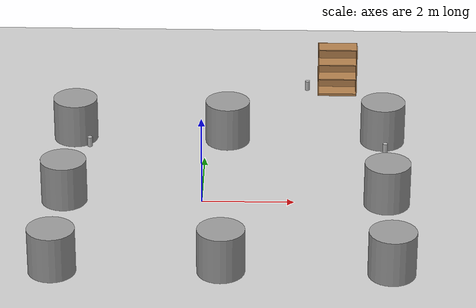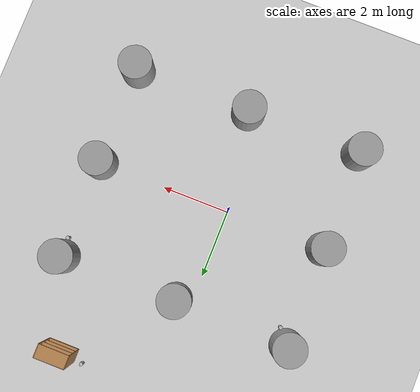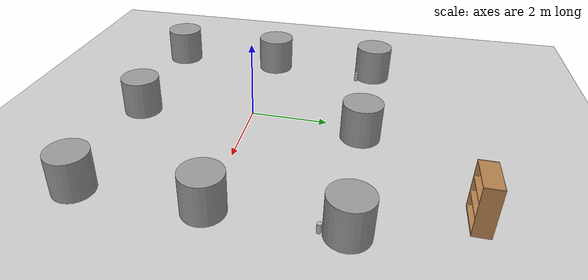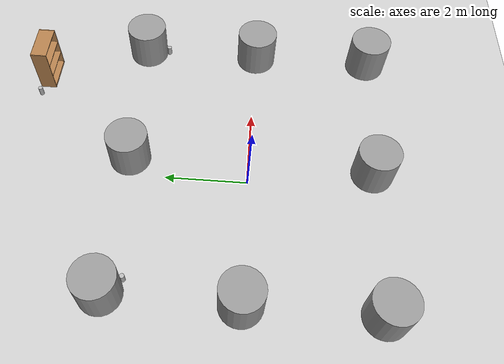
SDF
<sdf version="1.7">
 <world name="default">
  <model name="ground_plane">
   <static>1</static>
   <link name="link">
    <collision name="collision">
     <geometry><plane><normal>0 0 1</normal><size>100 100</size></plane></geometry>
     <surface>
      <contact><collide_bitmask>65535</collide_bitmask></contact>
      <friction><ode><mu>100</mu><mu2>50</mu2></ode></friction>
     </surface>
    </collision>
    <visual name="visual">
     <cast_shadows>0</cast_shadows>
     <geometry><plane><normal>0 0 1</normal><size>100 100</size></plane></geometry>
     <material>
      <script><uri>file://media/materials/scripts/gazebo.material</uri><name>Gazebo/Grey</name></script>
     </material>
    </visual>
   </link>
  </model>
  <model name="auto_parking">
   <link name="link_0">
    <inertial>
     <mass>1</mass>
     <inertia><ixx>0.145833</ixx><ixy>0</ixy><ixz>0</ixz><iyy>0.145833</iyy><iyz>0</iyz><izz>0.125</izz></inertia>
    </inertial>
    <pose>-3.4886 3.01134 0 0 -0 0</pose>
    <visual name="visual">
     <geometry><cylinder><radius>0.5</radius><length>1</length></cylinder></geometry>
     <material>
      <lighting>1</lighting>
      <script><uri>file://media/materials/scripts/gazebo.material</uri><name>Gazebo/Grey</name></script>
      <shader type="pixel"/>
     </material>
    </visual>
    <collision name="collision">
     <geometry><cylinder><radius>0.5</radius><length>1</length></cylinder></geometry>
     <surface>
      <friction>
       <ode><mu>1</mu><mu2>1</mu2><fdir1>0 0 0</fdir1><slip1>0</slip1><slip2>0</slip2></ode>
       <torsional>
        <coefficient>1</coefficient>
        <patch_radius>0</patch_radius>
        <surface_radius>0</surface_radius>
        <use_patch_radius>1</use_patch_radius>
        <ode><slip>0</slip></ode>
       </torsional>
      </friction>
      <bounce><restitution_coefficient>0</restitution_coefficient><threshold>1e+06</threshold></bounce>
      <contact>
       <collide_without_contact>0</collide_without_contact>
       <collide_without_contact_bitmask>1</collide_without_contact_bitmask>
       <collide_bitmask>1</collide_bitmask>
       <ode>
        <soft_cfm>0</soft_cfm>
        <soft_erp>0.2</soft_erp>
        <kp>1e+13</kp>
        <kd>1</kd>
        <max_vel>0.01</max_vel>
        <min_depth>0</min_depth>
       </ode>
       <bullet>
        <split_impulse>1</split_impulse>
        <split_impulse_penetration_threshold>-0.01</split_impulse_penetration_threshold>
        <soft_cfm>0</soft_cfm>
        <soft_erp>0.2</soft_erp>
        <kp>1e+13</kp>
        <kd>1</kd>
       </bullet>
      </contact>
     </surface>
    </collision>
   </link>
   <link name="link_2">
    <inertial>
     <mass>1</mass>
     <inertia><ixx>0.145833</ixx><ixy>0</ixy><ixz>0</ixz><iyy>0.145833</iyy><iyz>0</iyz><izz>0.125</izz></inertia>
    </inertial>
    <pose>-0.018151 2.92938 0 0 -0 0</pose>
    <visual name="visual">
     <geometry><cylinder><radius>0.5</radius><length>1</length></cylinder></geometry>
     <material>
      <lighting>1</lighting>
      <script><uri>file://media/materials/scripts/gazebo.material</uri><name>Gazebo/Grey</name></script>
      <shader type="pixel"/>
     </material>
    </visual>
    <collision name="collision">
     <geometry><cylinder><radius>0.5</radius><length>1</length></cylinder></geometry>
     <surface>
      <friction>
       <ode><mu>1</mu><mu2>1</mu2><fdir1>0 0 0</fdir1><slip1>0</slip1><slip2>0</slip2></ode>
       <torsional>
        <coefficient>1</coefficient>
        <patch_radius>0</patch_radius>
        <surface_radius>0</surface_radius>
        <use_patch_radius>1</use_patch_radius>
        <ode><slip>0</slip></ode>
       </torsional>
      </friction>
      <bounce><restitution_coefficient>0</restitution_coefficient><threshold>1e+06</threshold></bounce>
      <contact>
       <collide_without_contact>0</collide_without_contact>
       <collide_without_contact_bitmask>1</collide_without_contact_bitmask>
       <collide_bitmask>1</collide_bitmask>
       <ode>
        <soft_cfm>0</soft_cfm>
        <soft_erp>0.2</soft_erp>
        <kp>1e+13</kp>
        <kd>1</kd>
        <max_vel>0.01</max_vel>
        <min_depth>0</min_depth>
       </ode>
       <bullet>
        <split_impulse>1</split_impulse>
        <split_impulse_penetration_threshold>-0.01</split_impulse_penetration_threshold>
        <soft_cfm>0</soft_cfm>
        <soft_erp>0.2</soft_erp>
        <kp>1e+13</kp>
        <kd>1</kd>
       </bullet>
      </contact>
     </surface>
    </collision>
   </link>
   <link name="link_3">
    <inertial>
     <mass>1</mass>
     <inertia><ixx>0.145833</ixx><ixy>0</ixy><ixz>0</ixz><iyy>0.145833</iyy><iyz>0</iyz><izz>0.125</izz></inertia>
    </inertial>
    <pose>3.50971 2.96682 0 0 -0 0</pose>
    <visual name="visual">
     <geometry><cylinder><radius>0.5</radius><length>1</length></cylinder></geometry>
     <material>
      <lighting>1</lighting>
      <script><uri>file://media/materials/scripts/gazebo.material</uri><name>Gazebo/Grey</name></script>
      <shader type="pixel"/>
     </material>
    </visual>
    <collision name="collision">
     <geometry><cylinder><radius>0.5</radius><length>1</length></cylinder></geometry>
     <surface>
      <friction>
       <ode><mu>1</mu><mu2>1</mu2><fdir1>0 0 0</fdir1><slip1>0</slip1><slip2>0</slip2></ode>
       <torsional>
        <coefficient>1</coefficient>
        <patch_radius>0</patch_radius>
        <surface_radius>0</surface_radius>
        <use_patch_radius>1</use_patch_radius>
        <ode><slip>0</slip></ode>
       </torsional>
      </friction>
      <bounce><restitution_coefficient>0</restitution_coefficient><threshold>1e+06</threshold></bounce>
      <contact>
       <collide_without_contact>0</collide_without_contact>
       <collide_without_contact_bitmask>1</collide_without_contact_bitmask>
       <collide_bitmask>1</collide_bitmask>
       <ode>
        <soft_cfm>0</soft_cfm>
        <soft_erp>0.2</soft_erp>
        <kp>1e+13</kp>
        <kd>1</kd>
        <max_vel>0.01</max_vel>
        <min_depth>0</min_depth>
       </ode>
       <bullet>
        <split_impulse>1</split_impulse>
        <split_impulse_penetration_threshold>-0.01</split_impulse_penetration_threshold>
        <soft_cfm>0</soft_cfm>
        <soft_erp>0.2</soft_erp>
        <kp>1e+13</kp>
        <kd>1</kd>
       </bullet>
      </contact>
     </surface>
    </collision>
   </link>
   <link name="link_4">
    <inertial>
     <mass>1</mass>
     <inertia><ixx>0.145833</ixx><ixy>0</ixy><ixz>0</ixz><iyy>0.145833</iyy><iyz>0</iyz><izz>0.125</izz></inertia>
    </inertial>
    <pose>3.50631 0.005841 0 0 -0 0</pose>
    <visual name="visual">
     <geometry><cylinder><radius>0.5</radius><length>1</length></cylinder></geometry>
     <material>
      <lighting>1</lighting>
      <script><uri>file://media/materials/scripts/gazebo.material</uri><name>Gazebo/Grey</name></script>
      <shader type="pixel"/>
     </material>
    </visual>
    <collision name="collision">
     <geometry><cylinder><radius>0.5</radius><length>1</length></cylinder></geometry>
     <surface>
      <friction>
       <ode><mu>1</mu><mu2>1</mu2><fdir1>0 0 0</fdir1><slip1>0</slip1><slip2>0</slip2></ode>
       <torsional>
        <coefficient>1</coefficient>
        <patch_radius>0</patch_radius>
        <surface_radius>0</surface_radius>
        <use_patch_radius>1</use_patch_radius>
        <ode><slip>0</slip></ode>
       </torsional>
      </friction>
      <bounce><restitution_coefficient>0</restitution_coefficient><threshold>1e+06</threshold></bounce>
      <contact>
       <collide_without_contact>0</collide_without_contact>
       <collide_without_contact_bitmask>1</collide_without_contact_bitmask>
       <collide_bitmask>1</collide_bitmask>
       <ode>
        <soft_cfm>0</soft_cfm>
        <soft_erp>0.2</soft_erp>
        <kp>1e+13</kp>
        <kd>1</kd>
        <max_vel>0.01</max_vel>
        <min_depth>0</min_depth>
       </ode>
       <bullet>
        <split_impulse>1</split_impulse>
        <split_impulse_penetration_threshold>-0.01</split_impulse_penetration_threshold>
        <soft_cfm>0</soft_cfm>
        <soft_erp>0.2</soft_erp>
        <kp>1e+13</kp>
        <kd>1</kd>
       </bullet>
      </contact>
     </surface>
    </collision>
   </link>
   <link name="link_5">
    <inertial>
     <mass>1</mass>
     <inertia><ixx>0.145833</ixx><ixy>0</ixy><ixz>0</ixz><iyy>0.145833</iyy><iyz>0</iyz><izz>0.125</izz></inertia>
    </inertial>
    <pose>3.50321 -2.96981 0 0 -0 0</pose>
    <visual name="visual">
     <geometry><cylinder><radius>0.5</radius><length>1</length></cylinder></geometry>
     <material>
      <lighting>1</lighting>
      <script><uri>file://media/materials/scripts/gazebo.material</uri><name>Gazebo/Grey</name></script>
      <shader type="pixel"/>
     </material>
    </visual>
    <collision name="collision">
     <geometry><cylinder><radius>0.5</radius><length>1</length></cylinder></geometry>
     <surface>
      <friction>
       <ode><mu>1</mu><mu2>1</mu2><fdir1>0 0 0</fdir1><slip1>0</slip1><slip2>0</slip2></ode>
       <torsional>
        <coefficient>1</coefficient>
        <patch_radius>0</patch_radius>
        <surface_radius>0</surface_radius>
        <use_patch_radius>1</use_patch_radius>
        <ode><slip>0</slip></ode>
       </torsional>
      </friction>
      <bounce><restitution_coefficient>0</restitution_coefficient><threshold>1e+06</threshold></bounce>
      <contact>
       <collide_without_contact>0</collide_without_contact>
       <collide_without_contact_bitmask>1</collide_without_contact_bitmask>
       <collide_bitmask>1</collide_bitmask>
       <ode>
        <soft_cfm>0</soft_cfm>
        <soft_erp>0.2</soft_erp>
        <kp>1e+13</kp>
        <kd>1</kd>
        <max_vel>0.01</max_vel>
        <min_depth>0</min_depth>
       </ode>
       <bullet>
        <split_impulse>1</split_impulse>
        <split_impulse_penetration_threshold>-0.01</split_impulse_penetration_threshold>
        <soft_cfm>0</soft_cfm>
        <soft_erp>0.2</soft_erp>
        <kp>1e+13</kp>
        <kd>1</kd>
       </bullet>
      </contact>
     </surface>
    </collision>
   </link>
   <link name="link_6">
    <inertial>
     <mass>1</mass>
     <inertia><ixx>0.145833</ixx><ixy>0</ixy><ixz>0</ixz><iyy>0.145833</iyy><iyz>0</iyz><izz>0.125</izz></inertia>
    </inertial>
    <pose>-0.015713 -2.9486 0 0 -0 0</pose>
    <visual name="visual">
     <geometry><cylinder><radius>0.5</radius><length>1</length></cylinder></geometry>
     <material>
      <lighting>1</lighting>
      <script><uri>file://media/materials/scripts/gazebo.material</uri><name>Gazebo/Grey</name></script>
      <shader type="pixel"/>
     </material>
    </visual>
    <collision name="collision">
     <geometry><cylinder><radius>0.5</radius><length>1</length></cylinder></geometry>
     <surface>
      <friction>
       <ode><mu>1</mu><mu2>1</mu2><fdir1>0 0 0</fdir1><slip1>0</slip1><slip2>0</slip2></ode>
       <torsional>
        <coefficient>1</coefficient>
        <patch_radius>0</patch_radius>
        <surface_radius>0</surface_radius>
        <use_patch_radius>1</use_patch_radius>
        <ode><slip>0</slip></ode>
       </torsional>
      </friction>
      <bounce><restitution_coefficient>0</restitution_coefficient><threshold>1e+06</threshold></bounce>
      <contact>
       <collide_without_contact>0</collide_without_contact>
       <collide_without_contact_bitmask>1</collide_without_contact_bitmask>
       <collide_bitmask>1</collide_bitmask>
       <ode>
        <soft_cfm>0</soft_cfm>
        <soft_erp>0.2</soft_erp>
        <kp>1e+13</kp>
        <kd>1</kd>
        <max_vel>0.01</max_vel>
        <min_depth>0</min_depth>
       </ode>
       <bullet>
        <split_impulse>1</split_impulse>
        <split_impulse_penetration_threshold>-0.01</split_impulse_penetration_threshold>
        <soft_cfm>0</soft_cfm>
        <soft_erp>0.2</soft_erp>
        <kp>1e+13</kp>
        <kd>1</kd>
       </bullet>
      </contact>
     </surface>
    </collision>
   </link>
   <link name="link_7">
    <inertial>
     <mass>1</mass>
     <inertia><ixx>0.145833</ixx><ixy>0</ixy><ixz>0</ixz><iyy>0.145833</iyy><iyz>0</iyz><izz>0.125</izz></inertia>
    </inertial>
    <pose>-3.49491 -3.00507 0 0 -0 0</pose>
    <visual name="visual">
     <geometry><cylinder><radius>0.5</radius><length>1</length></cylinder></geometry>
     <material>
      <lighting>1</lighting>
      <script><uri>file://media/materials/scripts/gazebo.material</uri><name>Gazebo/Grey</name></script>
      <shader type="pixel"/>
     </material>
    </visual>
    <collision name="collision">
     <geometry><cylinder><radius>0.5</radius><length>1</length></cylinder></geometry>
     <surface>
      <friction>
       <ode><mu>1</mu><mu2>1</mu2><fdir1>0 0 0</fdir1><slip1>0</slip1><slip2>0</slip2></ode>
       <torsional>
        <coefficient>1</coefficient>
        <patch_radius>0</patch_radius>
        <surface_radius>0</surface_radius>
        <use_patch_radius>1</use_patch_radius>
        <ode><slip>0</slip></ode>
       </torsional>
      </friction>
      <bounce><restitution_coefficient>0</restitution_coefficient><threshold>1e+06</threshold></bounce>
      <contact>
       <collide_without_contact>0</collide_without_contact>
       <collide_without_contact_bitmask>1</collide_without_contact_bitmask>
       <collide_bitmask>1</collide_bitmask>
       <ode>
        <soft_cfm>0</soft_cfm>
        <soft_erp>0.2</soft_erp>
        <kp>1e+13</kp>
        <kd>1</kd>
        <max_vel>0.01</max_vel>
        <min_depth>0</min_depth>
       </ode>
       <bullet>
        <split_impulse>1</split_impulse>
        <split_impulse_penetration_threshold>-0.01</split_impulse_penetration_threshold>
        <soft_cfm>0</soft_cfm>
        <soft_erp>0.2</soft_erp>
        <kp>1e+13</kp>
        <kd>1</kd>
       </bullet>
      </contact>
     </surface>
    </collision>
   </link>
   <link name="link_8">
    <inertial>
     <mass>1</mass>
     <inertia><ixx>0.145833</ixx><ixy>0</ixy><ixz>0</ixz><iyy>0.145833</iyy><iyz>0</iyz><izz>0.125</izz></inertia>
    </inertial>
    <pose>-3.50186 0.010094 0 0 -0 0</pose>
    <visual name="visual">
     <geometry><cylinder><radius>0.5</radius><length>1</length></cylinder></geometry>
     <material>
      <lighting>1</lighting>
      <script><uri>file://media/materials/scripts/gazebo.material</uri><name>Gazebo/Grey</name></script>
      <shader type="pixel"/>
     </material>
    </visual>
    <collision name="collision">
     <geometry><cylinder><radius>0.5</radius><length>1</length></cylinder></geometry>
     <surface>
      <friction>
       <ode><mu>1</mu><mu2>1</mu2><fdir1>0 0 0</fdir1><slip1>0</slip1><slip2>0</slip2></ode>
       <torsional>
        <coefficient>1</coefficient>
        <patch_radius>0</patch_radius>
        <surface_radius>0</surface_radius>
        <use_patch_radius>1</use_patch_radius>
        <ode><slip>0</slip></ode>
       </torsional>
      </friction>
      <bounce><restitution_coefficient>0</restitution_coefficient><threshold>1e+06</threshold></bounce>
      <contact>
       <collide_without_contact>0</collide_without_contact>
       <collide_without_contact_bitmask>1</collide_without_contact_bitmask>
       <collide_bitmask>1</collide_bitmask>
       <ode>
        <soft_cfm>0</soft_cfm>
        <soft_erp>0.2</soft_erp>
        <kp>1e+13</kp>
        <kd>1</kd>
        <max_vel>0.01</max_vel>
        <min_depth>0</min_depth>
       </ode>
       <bullet>
        <split_impulse>1</split_impulse>
        <split_impulse_penetration_threshold>-0.01</split_impulse_penetration_threshold>
        <soft_cfm>0</soft_cfm>
        <soft_erp>0.2</soft_erp>
        <kp>1e+13</kp>
        <kd>1</kd>
       </bullet>
      </contact>
     </surface>
    </collision>
   </link>
   <static>0</static>
   <pose>0.5041 -0.019011 0.49998 3e-06 3e-06 -0.000157</pose>
  </model>
  <model name="bookshelf">
   <static>1</static>
   <link name="link">
    <inertial><mass>1</mass></inertial>
    <collision name="back">
     <pose>0 0.005 0.6 0 -0 0</pose>
     <geometry><box><size>0.9 0.01 1.2</size></box></geometry>
    </collision>
    <visual name="visual1">
     <pose>0 0.005 0.6 0 -0 0</pose>
     <geometry><box><size>0.9 0.01 1.2</size></box></geometry>
     <material>
      <script><uri>file://media/materials/scripts/gazebo.material</uri><name>Gazebo/Wood</name></script>
     </material>
    </visual>
    <collision name="left_side">
     <pose>0.45 -0.195 0.6 0 -0 0</pose>
     <geometry><box><size>0.02 0.4 1.2</size></box></geometry>
    </collision>
    <visual name="visual2">
     <pose>0.45 -0.195 0.6 0 -0 0</pose>
     <geometry><box><size>0.02 0.4 1.2</size></box></geometry>
     <material>
      <script><uri>file://media/materials/scripts/gazebo.material</uri><name>Gazebo/Wood</name></script>
     </material>
    </visual>
    <collision name="right_side">
     <pose>-0.45 -0.195 0.6 0 -0 0</pose>
     <geometry><box><size>0.02 0.4 1.2</size></box></geometry>
    </collision>
    <visual name="visual3">
     <pose>-0.45 -0.195 0.6 0 -0 0</pose>
     <geometry><box><size>0.02 0.4 1.2</size></box></geometry>
     <material>
      <script><uri>file://media/materials/scripts/gazebo.material</uri><name>Gazebo/Wood</name></script>
     </material>
    </visual>
    <collision name="bottom">
     <pose>0 -0.195 0.03 0 -0 0</pose>
     <geometry><box><size>0.88 0.4 0.06</size></box></geometry>
    </collision>
    <visual name="visual4">
     <pose>0 -0.195 0.03 0 -0 0</pose>
     <geometry><box><size>0.88 0.4 0.06</size></box></geometry>
     <material>
      <script><uri>file://media/materials/scripts/gazebo.material</uri><name>Gazebo/Wood</name></script>
     </material>
    </visual>
    <collision name="top">
     <pose>0 -0.195 1.19 0 -0 0</pose>
     <geometry><box><size>0.88 0.4 0.02</size></box></geometry>
    </collision>
    <visual name="visual5">
     <pose>0 -0.195 1.19 0 -0 0</pose>
     <geometry><box><size>0.88 0.4 0.02</size></box></geometry>
     <material>
      <script><uri>file://media/materials/scripts/gazebo.material</uri><name>Gazebo/Wood</name></script>
     </material>
    </visual>
    <collision name="low_shelf">
     <pose>0 -0.195 0.43 0 -0 0</pose>
     <geometry><box><size>0.88 0.4 0.02</size></box></geometry>
    </collision>
    <visual name="visual6">
     <pose>0 -0.195 0.43 0 -0 0</pose>
     <geometry><box><size>0.88 0.4 0.02</size></box></geometry>
     <material>
      <script><uri>file://media/materials/scripts/gazebo.material</uri><name>Gazebo/Wood</name></script>
     </material>
    </visual>
    <collision name="high_shelf">
     <pose>0 -0.195 0.8 0 -0 0</pose>
     <geometry><box><size>0.88 0.4 0.02</size></box></geometry>
    </collision>
    <visual name="visual7">
     <pose>0 -0.195 0.8 0 -0 0</pose>
     <geometry><box><size>0.88 0.4 0.02</size></box></geometry>
     <material>
      <script><uri>file://media/materials/scripts/gazebo.material</uri><name>Gazebo/Wood</name></script>
     </material>
    </visual>
   </link>
   <pose>3.02859 5.66693 0 0 -0 0</pose>
  </model>
  <model name="beer">
   <link name="link">
    <pose>0 0 0.115 0 -0 0</pose>
    <inertial>
     <mass>0.39</mass>
     <inertia><ixx>0.00058</ixx><ixy>0</ixy><ixz>0</ixz><iyy>0.00058</iyy><iyz>0</iyz><izz>0.00019</izz></inertia>
    </inertial>
    <collision name="collision">
     <geometry><cylinder><radius>0.055</radius><length>0.23</length></cylinder></geometry>
    </collision>
    <visual name="visual">
     <geometry><cylinder><radius>0.055</radius><length>0.23</length></cylinder></geometry>
     <material>
      <script>
       <uri>model://beer/materials/scripts</uri>
       <uri>model://beer/materials/textures</uri>
       <name>Beer/Diffuse</name>
      </script>
     </material>
    </visual>
   </link>
   <pose>-2.63619 2.55761 -7e-06 -1e-06 -0 -0.133277</pose>
  </model>
  <model name="beer_0">
   <link name="link">
    <pose>0 0 0.115 0 -0 0</pose>
    <inertial>
     <mass>0.39</mass>
     <inertia><ixx>0.00058</ixx><ixy>0</ixy><ixz>0</ixz><iyy>0.00058</iyy><iyz>0</iyz><izz>0.00019</izz></inertia>
    </inertial>
    <collision name="collision">
     <geometry><cylinder><radius>0.055</radius><length>0.23</length></cylinder></geometry>
    </collision>
    <visual name="visual">
     <geometry><cylinder><radius>0.055</radius><length>0.23</length></cylinder></geometry>
     <material>
      <script>
       <uri>model://beer/materials/scripts</uri>
       <uri>model://beer/materials/textures</uri>
       <name>Beer/Diffuse</name>
      </script>
     </material>
    </visual>
   </link>
   <pose>2.3284 5.59937 -7e-06 -1e-06 0 -1.1e-05</pose>
  </model>
  <model name="beer_2">
   <link name="link">
    <pose>0 0 0.115 0 -0 0</pose>
    <inertial>
     <mass>0.39</mass>
     <inertia><ixx>0.00058</ixx><ixy>0</ixy><ixz>0</ixz><iyy>0.00058</iyy><iyz>0</iyz><izz>0.00019</izz></inertia>
    </inertial>
    <collision name="collision">
     <geometry><cylinder><radius>0.055</radius><length>0.23</length></cylinder></geometry>
    </collision>
    <visual name="visual">
     <geometry><cylinder><radius>0.055</radius><length>0.23</length></cylinder></geometry>
     <material>
      <script>
       <uri>model://beer/materials/scripts</uri>
       <uri>model://beer/materials/textures</uri>
       <name>Beer/Diffuse</name>
      </script>
     </material>
    </visual>
   </link>
   <pose>4.06385 2.39036 -7e-06 -0 -0 -0.008105</pose>
  </model>
 </world>
</sdf>
